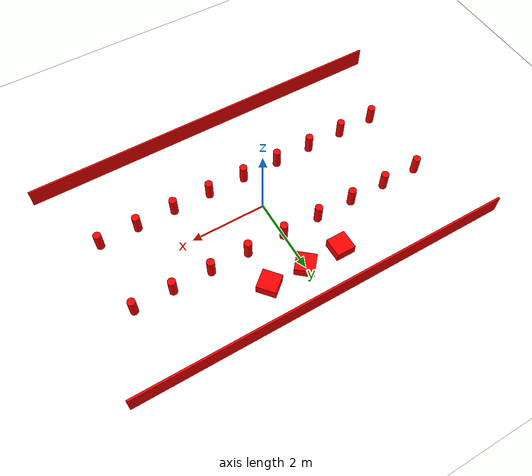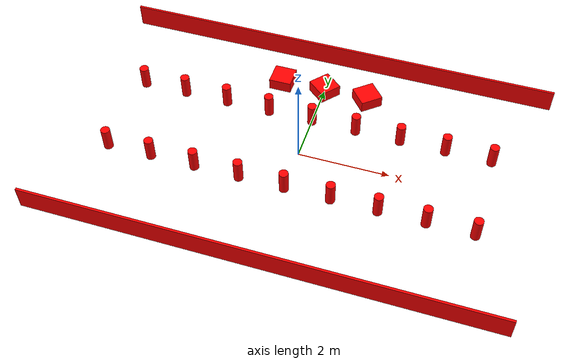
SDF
<?xml version='1.0' encoding='us-ascii'?>
<sdf version="1.9">
  <world name="landmark">
    <physics name="1ms" type="ignore">
      <max_step_size>0.001</max_step_size>
      <real_time_factor>1.0</real_time_factor>
    </physics>
    <plugin filename="gz-sim-user-commands-system" name="gz::sim::systems::UserCommands" />
    <plugin filename="gz-sim-physics-system" name="gz::sim::systems::Physics" />
    <plugin filename="gz-sim-sensors-system" name="gz::sim::systems::Sensors">
      <render_engine>ogre2</render_engine>
    </plugin>
    <plugin filename="gz-sim-scene-broadcaster-system" name="gz::sim::systems::SceneBroadcaster" />
    <scene>
      <ambient>1.0 1.0 1.0</ambient>
      <background>0.8 0.8 0.8</background>
      <sky />
    </scene>
    <light type="directional" name="sun">
      <cast_shadows>true</cast_shadows>
      <pose>0 0 3 0 0 0</pose>
      <diffuse>0.8 0.8 0.8 1</diffuse>
      <specular>0.8 0.8 0.8 1</specular>
      <direction>-0.5 0.1 -0.9</direction>
      <attenuation>
        <range>1000</range>
        <constant>0.9</constant>
        <linear>0.01</linear>
        <quadratic>0.001</quadratic>
      </attenuation>
    </light>
    <model name="ground_plane">
      <pose>50 0 0  0 0 0</pose>
      <static>true</static>
      <link name="ground_plane_link">
        <visual name="ground_plane_visual">
          <geometry>
            <plane>
              <normal>0 0 1</normal>
              <size>5000 5000</size>
            </plane>
          </geometry>
          <material>
            <ambient>1 1 1 1</ambient>
            <diffuse>1 1 1 1</diffuse>
            <specular>0 0 0 0</specular>
            <emissive>1 1 1 1</emissive>
          </material>
        </visual>
        <collision name="ground_plane_collision">
          <geometry>
            <plane>
              <normal>0 0 1</normal>
              <size>5000 5000</size>
            </plane>
          </geometry>
        </collision>
      </link>
    </model>

    <model name="pillar_1">
      <pose>1 1 0  0 0 0</pose>
      <static>true</static>
      <link name="pillar_1_link">
        <visual name="pillar_1_link_visual">
          <geometry>
            <cylinder>
              <length>1</length>
              <radius>0.1</radius>
            </cylinder>
          </geometry>
          <material>
            <ambient>1 0 0 1</ambient>
            <diffuse>1 0 0 1</diffuse>
            <specular>0 0 0 0</specular>
            <emissive>1 0 0 1</emissive>
          </material>
        </visual>
        <collision name="pillar_1_link_collision">
          <geometry>
            <cylinder>
              <length>1</length>
              <radius>0.1</radius>
            </cylinder>
          </geometry>
        </collision>
      </link>
    </model>

    <model name="pillar_2">
      <pose>-2 1 0  0 0 0</pose>
      <static>true</static>
      <link name="pillar_2_link">
        <visual name="pillar_2_link_visual">
          <geometry>
            <cylinder>
              <length>1</length>
              <radius>0.1</radius>
            </cylinder>
          </geometry>
          <material>
            <ambient>1 0 0 1</ambient>
            <diffuse>1 0 0 1</diffuse>
            <specular>0 0 0 0</specular>
            <emissive>1 0 0 1</emissive>
          </material>
        </visual>
        <collision name="pillar_2_link_collision">
          <geometry>
            <cylinder>
              <length>1</length>
              <radius>0.1</radius>
            </cylinder>
          </geometry>
        </collision>
      </link>
    </model>

    <model name="pillar_3">
      <pose>-1 1 0  0 0 0</pose>
      <static>true</static>
      <link name="pillar_3_link">
        <visual name="pillar_3_link_visual">
          <geometry>
            <cylinder>
              <length>1</length>
              <radius>0.1</radius>
            </cylinder>
          </geometry>
          <material>
            <ambient>1 0 0 1</ambient>
            <diffuse>1 0 0 1</diffuse>
            <specular>0 0 0 0</specular>
            <emissive>1 0 0 1</emissive>
          </material>
        </visual>
        <collision name="pillar_3_link_collision">
          <geometry>
            <cylinder>
              <length>1</length>
              <radius>0.1</radius>
            </cylinder>
          </geometry>
        </collision>
      </link>
    </model>

    <model name="pillar_4">
      <pose>0 1 0  0 0 0</pose>
      <static>true</static>
      <link name="pillar_4_link">
        <visual name="pillar_4_link_visual">
          <geometry>
            <cylinder>
              <length>1</length>
              <radius>0.1</radius>
            </cylinder>
          </geometry>
          <material>
            <ambient>1 0 0 1</ambient>
            <diffuse>1 0 0 1</diffuse>
            <specular>0 0 0 0</specular>
            <emissive>1 0 0 1</emissive>
          </material>
        </visual>
        <collision name="pillar_4_link_collision">
          <geometry>
            <cylinder>
              <length>1</length>
              <radius>0.1</radius>
            </cylinder>
          </geometry>
        </collision>
      </link>
    </model>

    <model name="pillar_5">
      <pose>2 1 0  0 0 0</pose>
      <static>true</static>
      <link name="pillar_5_link">
        <visual name="pillar_5_link_visual">
          <geometry>
            <cylinder>
              <length>1</length>
              <radius>0.1</radius>
            </cylinder>
          </geometry>
          <material>
            <ambient>1 0 0 1</ambient>
            <diffuse>1 0 0 1</diffuse>
            <specular>0 0 0 0</specular>
            <emissive>1 0 0 1</emissive>
          </material>
        </visual>
        <collision name="pillar_5_link_collision">
          <geometry>
            <cylinder>
              <length>1</length>
              <radius>0.1</radius>
            </cylinder>
          </geometry>
        </collision>
      </link>
    </model>

    <model name="pillar_6">
      <pose>-2 -1 0  0 0 0</pose>
      <static>true</static>
      <link name="pillar_6_link">
        <visual name="pillar_6_link_visual">
          <geometry>
            <cylinder>
              <length>1</length>
              <radius>0.1</radius>
            </cylinder>
          </geometry>
          <material>
            <ambient>1 0 0 1</ambient>
            <diffuse>1 0 0 1</diffuse>
            <specular>0 0 0 0</specular>
            <emissive>1 0 0 1</emissive>
          </material>
        </visual>
        <collision name="pillar_6_link_collision">
          <geometry>
            <cylinder>
              <length>1</length>
              <radius>0.1</radius>
            </cylinder>
          </geometry>
        </collision>
      </link>
    </model>

    <model name="pillar_7">
      <pose>-1 -1 0  0 0 0</pose>
      <static>true</static>
      <link name="pillar_7_link">
        <visual name="pillar_7_link_visual">
          <geometry>
            <cylinder>
              <length>1</length>
              <radius>0.1</radius>
            </cylinder>
          </geometry>
          <material>
            <ambient>1 0 0 1</ambient>
            <diffuse>1 0 0 1</diffuse>
            <specular>0 0 0 0</specular>
            <emissive>1 0 0 1</emissive>
          </material>
        </visual>
        <collision name="pillar_7_link_collision">
          <geometry>
            <cylinder>
              <length>1</length>
              <radius>0.1</radius>
            </cylinder>
          </geometry>
        </collision>
      </link>
    </model>

    <model name="pillar_8">
      <pose>0 -1 0  0 0 0</pose>
      <static>true</static>
      <link name="pillar_8_link">
        <visual name="pillar_8_link_visual">
          <geometry>
            <cylinder>
              <length>1</length>
              <radius>0.1</radius>
            </cylinder>
          </geometry>
          <material>
            <ambient>1 0 0 1</ambient>
            <diffuse>1 0 0 1</diffuse>
            <specular>0 0 0 0</specular>
            <emissive>1 0 0 1</emissive>
          </material>
        </visual>
        <collision name="pillar_8_link_collision">
          <geometry>
            <cylinder>
              <length>1</length>
              <radius>0.1</radius>
            </cylinder>
          </geometry>
        </collision>
      </link>
    </model>

    <model name="pillar_9">
      <pose>1 -1 0  0 0 0</pose>
      <static>true</static>
      <link name="pillar_9_link">
        <visual name="pillar_9_link_visual">
          <geometry>
            <cylinder>
              <length>1</length>
              <radius>0.1</radius>
            </cylinder>
          </geometry>
          <material>
            <ambient>1 0 0 1</ambient>
            <diffuse>1 0 0 1</diffuse>
            <specular>0 0 0 0</specular>
            <emissive>1 0 0 1</emissive>
          </material>
        </visual>
        <collision name="pillar_9_link_collision">
          <geometry>
            <cylinder>
              <length>1</length>
              <radius>0.1</radius>
            </cylinder>
          </geometry>
        </collision>
      </link>
    </model>

    <model name="pillar_10">
      <pose>2 -1 0  0 0 0</pose>
      <static>true</static>
      <link name="pillar_10_link">
        <visual name="pillar_10_link_visual">
          <geometry>
            <cylinder>
              <length>1</length>
              <radius>0.1</radius>
            </cylinder>
          </geometry>
          <material>
            <ambient>1 0 0 1</ambient>
            <diffuse>1 0 0 1</diffuse>
            <specular>0 0 0 0</specular>
            <emissive>1 0 0 1</emissive>
          </material>
        </visual>
        <collision name="pillar_10_link_collision">
          <geometry>
            <cylinder>
              <length>1</length>
              <radius>0.1</radius>
            </cylinder>
          </geometry>
        </collision>
      </link>
    </model>

    <model name="pillar_11">
      <pose>3 -1 0  0 0 0</pose>
      <static>true</static>
      <link name="pillar_11_link">
        <visual name="pillar_11_link_visual">
          <geometry>
            <cylinder>
              <length>1</length>
              <radius>0.1</radius>
            </cylinder>
          </geometry>
          <material>
            <ambient>1 0 0 1</ambient>
            <diffuse>1 0 0 1</diffuse>
            <specular>0 0 0 0</specular>
            <emissive>1 0 0 1</emissive>
          </material>
        </visual>
        <collision name="pillar_11_link_collision">
          <geometry>
            <cylinder>
              <length>1</length>
              <radius>0.1</radius>
            </cylinder>
          </geometry>
        </collision>
      </link>
    </model>

    <model name="pillar_12">
      <pose>4 -1 0  0 0 0</pose>
      <static>true</static>
      <link name="pillar_12_link">
        <visual name="pillar_12_link_visual">
          <geometry>
            <cylinder>
              <length>1</length>
              <radius>0.1</radius>
            </cylinder>
          </geometry>
          <material>
            <ambient>1 0 0 1</ambient>
            <diffuse>1 0 0 1</diffuse>
            <specular>0 0 0 0</specular>
            <emissive>1 0 0 1</emissive>
          </material>
        </visual>
        <collision name="pillar_12_link_collision">
          <geometry>
            <cylinder>
              <length>1</length>
              <radius>0.1</radius>
            </cylinder>
          </geometry>
        </collision>
      </link>
    </model>

    <model name="pillar_13">
      <pose>-3 -1 0  0 0 0</pose>
      <static>true</static>
      <link name="pillar_13_link">
        <visual name="pillar_13_link_visual">
          <geometry>
            <cylinder>
              <length>1</length>
              <radius>0.1</radius>
            </cylinder>
          </geometry>
          <material>
            <ambient>1 0 0 1</ambient>
            <diffuse>1 0 0 1</diffuse>
            <specular>0 0 0 0</specular>
            <emissive>1 0 0 1</emissive>
          </material>
        </visual>
        <collision name="pillar_13_link_collision">
          <geometry>
            <cylinder>
              <length>1</length>
              <radius>0.1</radius>
            </cylinder>
          </geometry>
        </collision>
      </link>
    </model>

    <model name="pillar_14">
      <pose>-4 -1 0  0 0 0</pose>
      <static>true</static>
      <link name="pillar_14_link">
        <visual name="pillar_14_link_visual">
          <geometry>
            <cylinder>
              <length>1</length>
              <radius>0.1</radius>
            </cylinder>
          </geometry>
          <material>
            <ambient>1 0 0 1</ambient>
            <diffuse>1 0 0 1</diffuse>
            <specular>0 0 0 0</specular>
            <emissive>1 0 0 1</emissive>
          </material>
        </visual>
        <collision name="pillar_14_link_collision">
          <geometry>
            <cylinder>
              <length>1</length>
              <radius>0.1</radius>
            </cylinder>
          </geometry>
        </collision>
      </link>
    </model>

    <model name="pillar_15">
      <pose>3 1 0  0 0 0</pose>
      <static>true</static>
      <link name="pillar_15_link">
        <visual name="pillar_15_link_visual">
          <geometry>
            <cylinder>
              <length>1</length>
              <radius>0.1</radius>
            </cylinder>
          </geometry>
          <material>
            <ambient>1 0 0 1</ambient>
            <diffuse>1 0 0 1</diffuse>
            <specular>0 0 0 0</specular>
            <emissive>1 0 0 1</emissive>
          </material>
        </visual>
        <collision name="pillar_15_link_collision">
          <geometry>
            <cylinder>
              <length>1</length>
              <radius>0.1</radius>
            </cylinder>
          </geometry>
        </collision>
      </link>
    </model>

    <model name="pillar_16">
      <pose>4 1 0  0 0 0</pose>
      <static>true</static>
      <link name="pillar_16_link">
        <visual name="pillar_16_link_visual">
          <geometry>
            <cylinder>
              <length>1</length>
              <radius>0.1</radius>
            </cylinder>
          </geometry>
          <material>
            <ambient>1 0 0 1</ambient>
            <diffuse>1 0 0 1</diffuse>
            <specular>0 0 0 0</specular>
            <emissive>1 0 0 1</emissive>
          </material>
        </visual>
        <collision name="pillar_16_link_collision">
          <geometry>
            <cylinder>
              <length>1</length>
              <radius>0.1</radius>
            </cylinder>
          </geometry>
        </collision>
      </link>
    </model>

    <model name="pillar_17">
      <pose>-3 1 0  0 0 0</pose>
      <static>true</static>
      <link name="pillar_17_link">
        <visual name="pillar_17_link_visual">
          <geometry>
            <cylinder>
              <length>1</length>
              <radius>0.1</radius>
            </cylinder>
          </geometry>
          <material>
            <ambient>1 0 0 1</ambient>
            <diffuse>1 0 0 1</diffuse>
            <specular>0 0 0 0</specular>
            <emissive>1 0 0 1</emissive>
          </material>
        </visual>
        <collision name="pillar_17_link_collision">
          <geometry>
            <cylinder>
              <length>1</length>
              <radius>0.1</radius>
            </cylinder>
          </geometry>
        </collision>
      </link>
    </model>

    <model name="pillar_18">
      <pose>-4 1 0  0 0 0</pose>
      <static>true</static>
      <link name="pillar_18_link">
        <visual name="pillar_18_link_visual">
          <geometry>
            <cylinder>
              <length>1</length>
              <radius>0.1</radius>
            </cylinder>
          </geometry>
          <material>
            <ambient>1 0 0 1</ambient>
            <diffuse>1 0 0 1</diffuse>
            <specular>0 0 0 0</specular>
            <emissive>1 0 0 1</emissive>
          </material>
        </visual>
        <collision name="pillar_18_link_collision">
          <geometry>
            <cylinder>
              <length>1</length>
              <radius>0.1</radius>
            </cylinder>
          </geometry>
        </collision>
      </link>
    </model>

    <model name="cube_1">
      <pose>1 2 0  0 0 0.7</pose>
      <static>true</static>
      <link name="cube_1_link">
        <visual name="cube_1_link_visual">
          <geometry>
            <box>
              <size>0.5 0.5 0.5</size>
            </box>
          </geometry>
          <material>
            <ambient>1 0 0 1</ambient>
            <diffuse>1 0 0 1</diffuse>
            <specular>0 0 0 0</specular>
            <emissive>1 0 0 1</emissive>
          </material>
        </visual>
        <collision name="cube_1_link_collision">
          <geometry>
            <box>
              <size>0.5 0.5 0.5</size>
            </box>
          </geometry>
        </collision>
      </link>
    </model>

    <model name="cube_2">
      <pose>0 2 0  0 0 -0.7</pose>
      <static>true</static>
      <link name="cube_2_link">
        <visual name="cube_2_link_visual">
          <geometry>
            <box>
              <size>0.5 0.5 0.5</size>
            </box>
          </geometry>
          <material>
            <ambient>1 0 0 1</ambient>
            <diffuse>1 0 0 1</diffuse>
            <specular>0 0 0 0</specular>
            <emissive>1 0 0 1</emissive>
          </material>
        </visual>
        <collision name="cube_2_link_collision">
          <geometry>
            <box>
              <size>0.5 0.5 0.5</size>
            </box>
          </geometry>
        </collision>
      </link>
    </model>

    <model name="cube_3">
      <pose>-1 2 0  0 0 1.57</pose>
      <static>true</static>
      <link name="cube_3_link">
        <visual name="cube_3_link_visual">
          <geometry>
            <box>
              <size>0.5 0.5 0.5</size>
            </box>
          </geometry>
          <material>
            <ambient>1 0 0 1</ambient>
            <diffuse>1 0 0 1</diffuse>
            <specular>0 0 0 0</specular>
            <emissive>1 0 0 1</emissive>
          </material>
        </visual>
        <collision name="cube_3_link_collision">
          <geometry>
            <box>
              <size>0.5 0.5 0.5</size>
            </box>
          </geometry>
        </collision>
      </link>
    </model>

    <model name="line_1">
      <pose>0 3 0  0 0 0</pose>
      <static>true</static>
      <link name="line_1_link">
        <visual name="line_1_link_visual">
          <geometry>
            <box>
              <size>10 0.05 1.0</size>
            </box>
          </geometry>
          <material>
            <ambient>1 0 0 1</ambient>
            <diffuse>1 0 0 1</diffuse>
            <specular>0 0 0 0</specular>
            <emissive>1 0 0 1</emissive>
          </material>
        </visual>
        <collision name="line_1_link_collision">
          <geometry>
            <box>
              <size>10 0.05 1.0</size>
            </box>
          </geometry>
        </collision>
      </link>
    </model>

    <model name="line_2">
      <pose>0 -3 0  0 0 0</pose>
      <static>true</static>
      <link name="line_2_link">
        <visual name="line_2_link_visual">
          <geometry>
            <box>
              <size>10 0.05 1.0</size>
            </box>
          </geometry>
          <material>
            <ambient>1 0 0 1</ambient>
            <diffuse>1 0 0 1</diffuse>
            <specular>0 0 0 0</specular>
            <emissive>1 0 0 1</emissive>
          </material>
        </visual>
        <collision name="line_2_link_collision">
          <geometry>
            <box>
              <size>10 0.05 1.0</size>
            </box>
          </geometry>
        </collision>
      </link>
    </model>

  </world>
</sdf>
